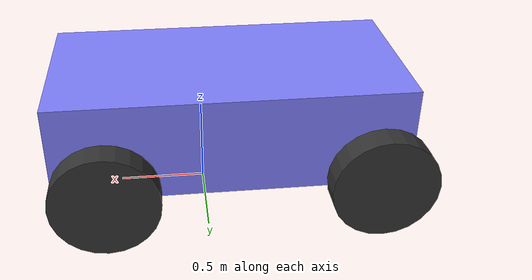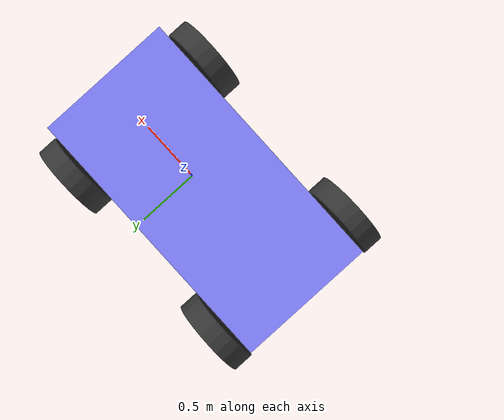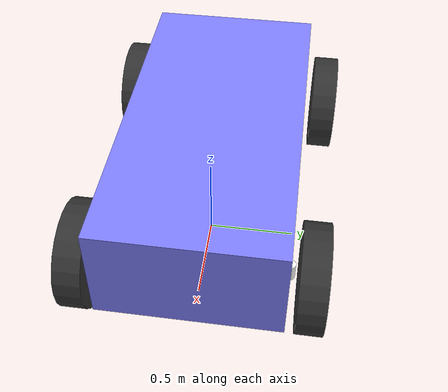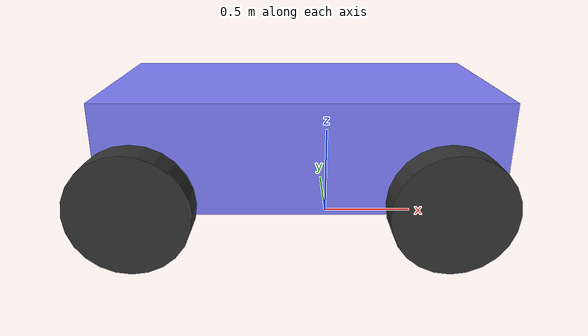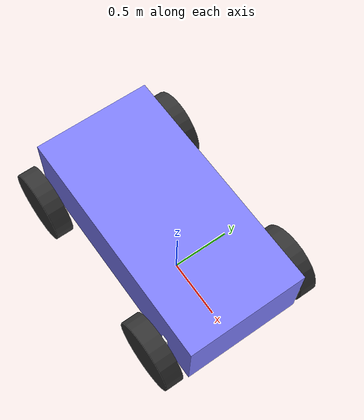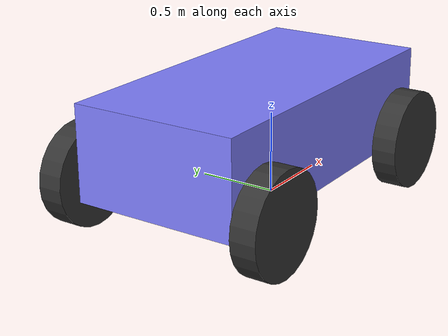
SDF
<sdf version="1.6">
 <world name="default">
  <physics name="1ms" type="ignored">
   <max_step_size>0.001</max_step_size>
   <real_time_factor>1.0</real_time_factor>
  </physics>
  <plugin filename="gz-sim-physics-system" name="gz::sim::systems::Physics"/>
  <plugin filename="gz-sim-sensors-system" name="gz::sim::systems::Sensors"/>
  <plugin filename="gz-sim-user-commands-system" name="gz::sim::systems::UserCommands"/>
  <plugin filename="gz-sim-scene-broadcaster-system" name="gz::sim::systems::SceneBroadcaster"/>
  <include><uri>model://sun</uri></include>
  <include><pose>0 0 0.325 0 0 0</pose><uri>model://msbot-ackermann</uri></include>
 </world>
</sdf>

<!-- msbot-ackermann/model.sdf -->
<sdf version="1.6">
    <model name='msbot'>
      <link name='chassis'>
        <pose>-0.151427 -0 0.175 0 -0 0</pose>
        <inertial>
          <mass>1.14395</mass>
          <inertia>
            <ixx>0.126164</ixx>
            <ixy>0</ixy>
            <ixz>0</ixz>
            <iyy>0.416519</iyy>
            <iyz>0</iyz>
            <izz>0.481014</izz>
          </inertia>
        </inertial>
        <visual name='visual'>
          <geometry>
            <box>
              <size>2.01142 1 0.568726</size>
            </box>
          </geometry>
          <material>
            <ambient>0.5 0.5 1.0 1</ambient>
            <diffuse>0.5 0.5 1.0 1</diffuse>
            <specular>0.0 0.0 1.0 1</specular>
          </material>
        </visual>
        <collision name='collision'>
          <geometry>
            <box>
              <size>2.01142 1 0.568726</size>
            </box>
          </geometry>
        </collision>
      </link>

      <link name='front_left_wheel'>
        <pose>0.554283 0.625029 -0.025 -1.5707 0 0</pose>
        <inertial>
          <mass>2</mass>
          <inertia>
            <ixx>0.145833</ixx>
            <ixy>0</ixy>
            <ixz>0</ixz>
            <iyy>0.145833</iyy>
            <iyz>0</iyz>
            <izz>0.125</izz>
          </inertia>
        </inertial>
        <visual name='visual'>
          <geometry>
            <cylinder>
              <length>0.15</length>
              <radius>0.3</radius>
            </cylinder>
          </geometry>
          <material>
            <ambient>0.2 0.2 0.2 1</ambient>
            <diffuse>0.2 0.2 0.2 1</diffuse>
            <specular>0.2 0.2 0.2 1</specular>
          </material>
        </visual>
        <collision name='collision'>
          <geometry>
            <cylinder>
              <length>0.15</length>
              <radius>0.3</radius>
            </cylinder>
          </geometry>
          <surface>
            <friction>
              <ode>
                <mu>0.5</mu>
                <mu2>1.0</mu2>
                <fdir1>0 0 1</fdir1>
              </ode>
              <bullet>
                <friction>0.5</friction>
                <friction2>1</friction2>
                <rolling_friction>0.1</rolling_friction>
              </bullet>
            </friction>
          </surface>
        </collision>
      </link>

      <link name='rear_left_wheel'>
        <pose>-0.957138 0.625029 -0.025 -1.5707 0 0</pose>
        <inertial>
          <mass>2</mass>
          <inertia>
            <ixx>0.145833</ixx>
            <ixy>0</ixy>
            <ixz>0</ixz>
            <iyy>0.145833</iyy>
            <iyz>0</iyz>
            <izz>0.125</izz>
          </inertia>
        </inertial>
        <visual name='visual'>
          <geometry>
            <cylinder>
              <length>0.15</length>
              <radius>0.3</radius>
            </cylinder>
          </geometry>
          <material>
            <ambient>0.2 0.2 0.2 1</ambient>
            <diffuse>0.2 0.2 0.2 1</diffuse>
            <specular>0.2 0.2 0.2 1</specular>
          </material>
        </visual>
        <collision name='collision'>
          <geometry>
            <cylinder>
              <length>0.15</length>
              <radius>0.3</radius>
            </cylinder>
          </geometry>
          <surface>
            <friction>
              <ode>
                <mu>0.5</mu>
                <mu2>1.0</mu2>
                <fdir1>0 0 1</fdir1>
              </ode>
              <bullet>
                <friction>0.5</friction>
                <friction2>1</friction2>
                <rolling_friction>0.5</rolling_friction>
              </bullet>
            </friction>
          </surface>
        </collision>
      </link>

      <link name='front_right_wheel'>
        <pose>0.554282 -0.625029 -0.025 -1.5707 0 0</pose>
        <inertial>
          <mass>2</mass>
          <inertia>
            <ixx>0.145833</ixx>
            <ixy>0</ixy>
            <ixz>0</ixz>
            <iyy>0.145833</iyy>
            <iyz>0</iyz>
            <izz>0.125</izz>
          </inertia>
        </inertial>
        <visual name='visual'>
          <geometry>
            <cylinder>
              <length>0.15</length>
              <radius>0.3</radius>
            </cylinder>
          </geometry>
          <material>
            <ambient>0.2 0.2 0.2 1</ambient>
            <diffuse>0.2 0.2 0.2 1</diffuse>
            <specular>0.2 0.2 0.2 1</specular>
          </material>
        </visual>
        <collision name='collision'>
          <geometry>
            <cylinder>
              <length>0.15</length>
              <radius>0.3</radius>
            </cylinder>
          </geometry>
          <surface>
            <friction>
              <ode>
                <mu>0.5</mu>
                <mu2>1.0</mu2>
                <fdir1>0 0 1</fdir1>
              </ode>
              <bullet>
                <friction>0.5</friction>
                <friction2>1</friction2>
                <rolling_friction>0.1</rolling_friction>
              </bullet>
            </friction>
          </surface>
        </collision>
      </link>

      <link name='rear_right_wheel'>
        <pose>-0.957138 -0.625029 -0.025 -1.5707 0 0</pose>
        <inertial>
          <mass>2</mass>
          <inertia>
            <ixx>0.145833</ixx>
            <ixy>0</ixy>
            <ixz>0</ixz>
            <iyy>0.145833</iyy>
            <iyz>0</iyz>
            <izz>0.125</izz>
          </inertia>
        </inertial>
        <visual name='visual'>
          <geometry>
            <cylinder>
              <length>0.15</length>
              <radius>0.3</radius>
            </cylinder>
          </geometry>
          <material>
            <ambient>0.2 0.2 0.2 1</ambient>
            <diffuse>0.2 0.2 0.2 1</diffuse>
            <specular>0.2 0.2 0.2 1</specular>
          </material>
        </visual>
        <collision name='collision'>
          <geometry>
            <cylinder>
              <length>0.15</length>
              <radius>0.3</radius>
            </cylinder>
          </geometry>
          <surface>
            <friction>
              <ode>
                <mu>0.5</mu>
                <mu2>1.0</mu2>
                <fdir1>0 0 1</fdir1>
              </ode>
              <bullet>
                <friction>0.5</friction>
                <friction2>1</friction2>
                <rolling_friction>0.5</rolling_friction>
              </bullet>
            </friction>
          </surface>
        </collision>
      </link>

      <link name="front_left_wheel_steering_link">
        <pose>0.554283 0.5 0.02 0 0 0</pose>
        <inertial>
          <mass>0.5</mass>
          <inertia>
            <ixx>0.0153</ixx>
            <iyy>0.025</iyy>
            <izz>0.0153</izz>
          </inertia>
        </inertial>
        <visual name="steering_link_visual">
          <pose>0 0 0 0 0 0</pose>
          <geometry>
            <cylinder>
              <length>0.1</length>
              <radius>0.03</radius>
            </cylinder>
          </geometry>
          <material>
            <ambient>1 1 1</ambient>
            <diffuse>1 1 1</diffuse>
          </material>
        </visual>
      </link>

      <link name="front_right_wheel_steering_link">
        <pose>0.554283 -0.5 0.02 0 0 0</pose>
        <inertial>
          <mass>0.5</mass>
          <inertia>
            <ixx>0.0153</ixx>
            <iyy>0.025</iyy>
            <izz>0.0153</izz>
          </inertia>
        </inertial>
        <visual name="steering_link_visual">
          <pose>0 0 0 0 0 0</pose>
          <geometry>
            <cylinder>
              <length>0.1</length>
              <radius>0.03</radius>
            </cylinder>
          </geometry>
          <material>
            <ambient>1 1 1</ambient>
            <diffuse>1 1 1</diffuse>
          </material>
        </visual>
      </link>

      <joint name="front_left_wheel_steering_joint" type="revolute">
        <child>front_left_wheel_steering_link</child>
        <parent>chassis</parent>
        <axis>
          <xyz>0 0 1</xyz>
          <limit>
            <lower>-0.6</lower>
            <upper>+0.6</upper>
            <velocity>1.0</velocity>
            <effort>25</effort>
          </limit>
          <use_parent_model_frame>1</use_parent_model_frame>
        </axis>
      </joint>

      <joint name="front_right_wheel_steering_joint" type="revolute">
        <parent>chassis</parent>
        <child>front_right_wheel_steering_link</child>
        <axis>
          <xyz>0 0 1</xyz>
          <limit>
            <lower>-0.6</lower>
            <upper>+0.6</upper>
            <velocity>1.0</velocity>
            <effort>25</effort>
          </limit>
        </axis>
      </joint>

      <joint name='front_left_wheel_joint' type='revolute'>
        <parent>front_left_wheel_steering_link</parent>
        <child>front_left_wheel</child>
        <axis>
          <xyz>0 0 1</xyz>
          <limit>
            <lower>-1.79769e+308</lower>
            <upper>1.79769e+308</upper>
          </limit>
        </axis>
      </joint>

      <joint name='front_right_wheel_joint' type='revolute'>
        <parent>front_right_wheel_steering_link</parent>
        <child>front_right_wheel</child>
        <axis>
          <xyz>0 0 1</xyz>
          <limit>
            <lower>-1.79769e+308</lower>
            <upper>1.79769e+308</upper>
          </limit>
        </axis>
      </joint>

      <joint name='rear_left_wheel_joint' type='revolute'>
        <parent>chassis</parent>
        <child>rear_left_wheel</child>
        <axis>
          <xyz>0 0 1</xyz>
          <limit>
            <lower>-1.79769e+308</lower>
            <upper>1.79769e+308</upper>
          </limit>
        </axis>
      </joint>

      <joint name='rear_right_wheel_joint' type='revolute'>
        <parent>chassis</parent>
        <child>rear_right_wheel</child>
        <axis>
          <xyz>0 0 1</xyz>
          <limit>
            <lower>-1.79769e+308</lower>
            <upper>1.79769e+308</upper>
          </limit>
        </axis>
      </joint>

      <plugin
        filename="gz-sim-ackermann-steering-system"
        name="gz::sim::systems::AckermannSteering">
        <left_joint>front_left_wheel_joint</left_joint>
        <left_joint>rear_left_wheel_joint</left_joint>
        <right_joint>front_right_wheel_joint</right_joint>
        <right_joint>rear_right_wheel_joint</right_joint>
        <left_steering_joint>front_left_wheel_steering_joint</left_steering_joint>
        <right_steering_joint>front_right_wheel_steering_joint</right_steering_joint>
        <kingpin_width>1.0</kingpin_width>
        <steering_limit>0.5</steering_limit>
        <wheel_base>1.0</wheel_base>
        <wheel_separation>1.25</wheel_separation>
        <wheel_radius>0.3</wheel_radius>
        <min_velocity>-1</min_velocity>
        <max_velocity>1</max_velocity>
        <min_acceleration>-3</min_acceleration>
        <max_acceleration>3</max_acceleration>
      </plugin>

      <plugin
        filename="gz-sim-joint-state-publisher-system"
        name="gz::sim::systems::JointStatePublisher">
      </plugin>

      <plugin
        filename="gz-sim-pose-publisher-system"
        name="gz::sim::systems::PosePublisher">
        <publish_link_pose>true</publish_link_pose>
        <use_pose_vector_msg>true</use_pose_vector_msg>
        <static_publisher>true</static_publisher>
        <static_update_frequency>1</static_update_frequency>
      </plugin>

      <plugin
        filename="gz-sim-odometry-publisher-system"
        name="gz::sim::systems::OdometryPublisher">
        <odom_frame>msbot/odom</odom_frame>
        <robot_base_frame>msbot</robot_base_frame>
      </plugin>

    </model>
</sdf>
